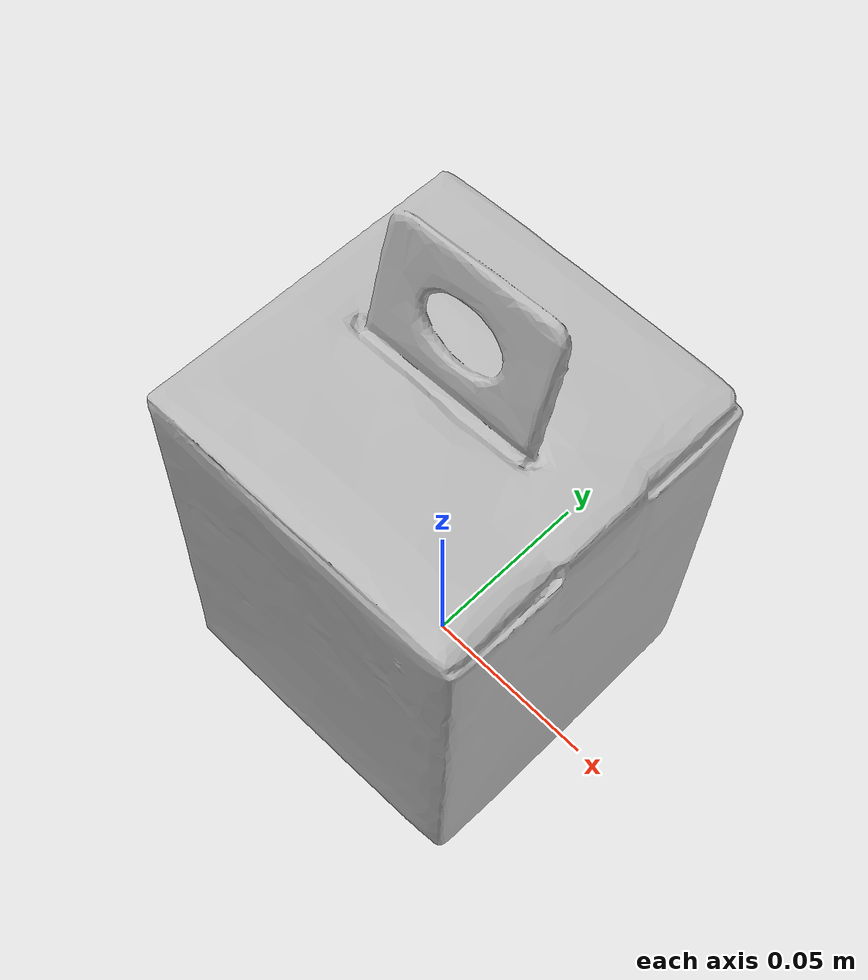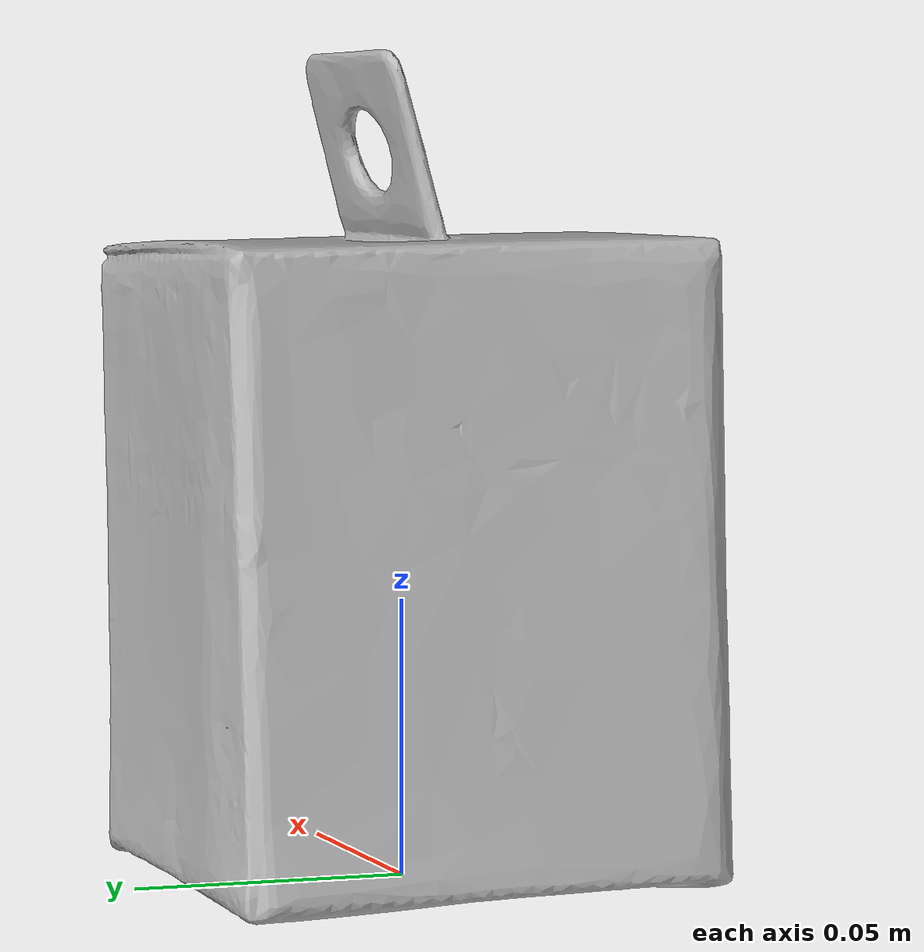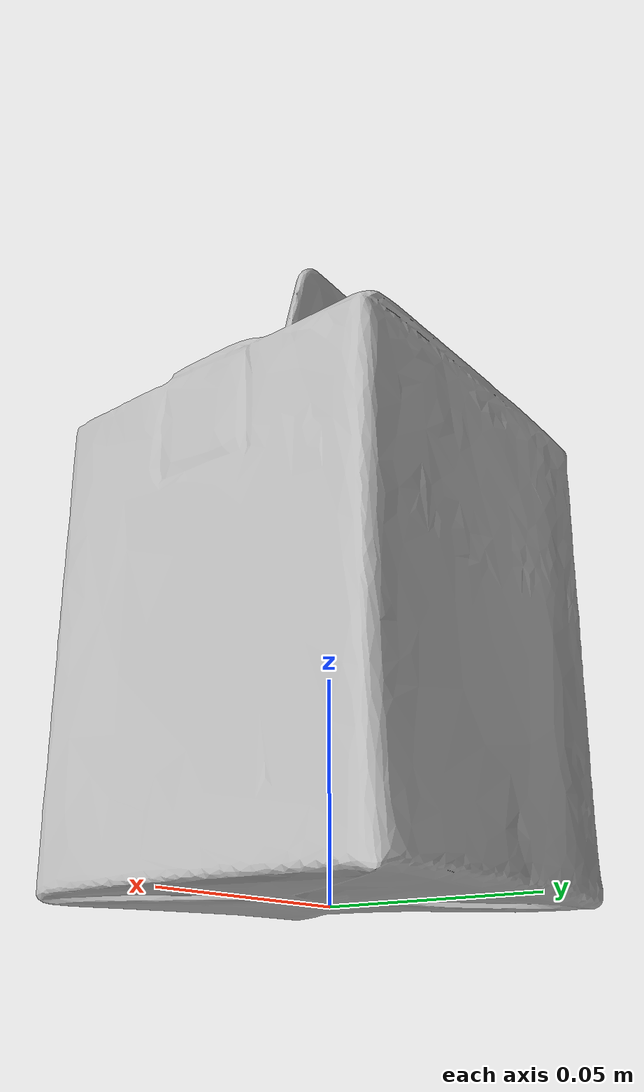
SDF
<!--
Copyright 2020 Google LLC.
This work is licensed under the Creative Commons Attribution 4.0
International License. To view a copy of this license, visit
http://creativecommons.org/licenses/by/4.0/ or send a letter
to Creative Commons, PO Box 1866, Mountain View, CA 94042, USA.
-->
<?xml version="1.0" ?>
<sdf version="1.6">
  <model name="Crayola_Washable_Sidewalk_Chalk_16_pack">
    <link name="link_0">
      <visual name="visual">
        <geometry>
          <mesh>
            <uri>meshes/model.obj</uri>
          </mesh>
        </geometry>
      </visual>
      <collision name="collision_0">
        <geometry>
          <mesh>
            <uri>meshes/model.obj</uri>
          </mesh>
        </geometry>
      </collision>
    </link>
  </model>
</sdf>
